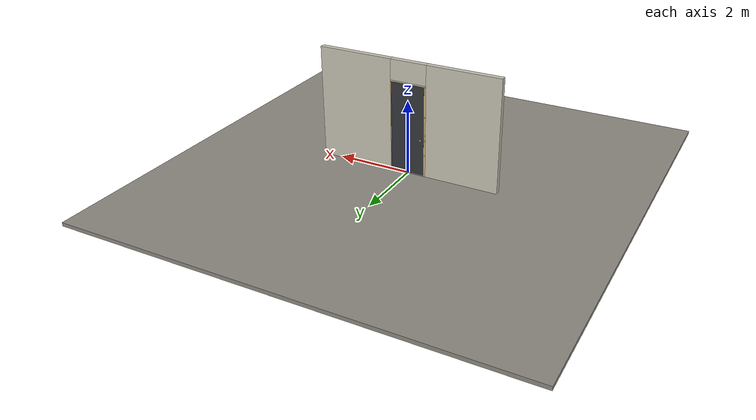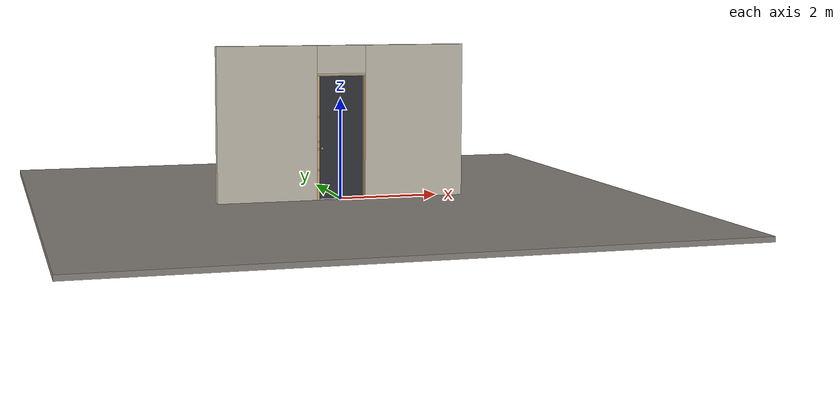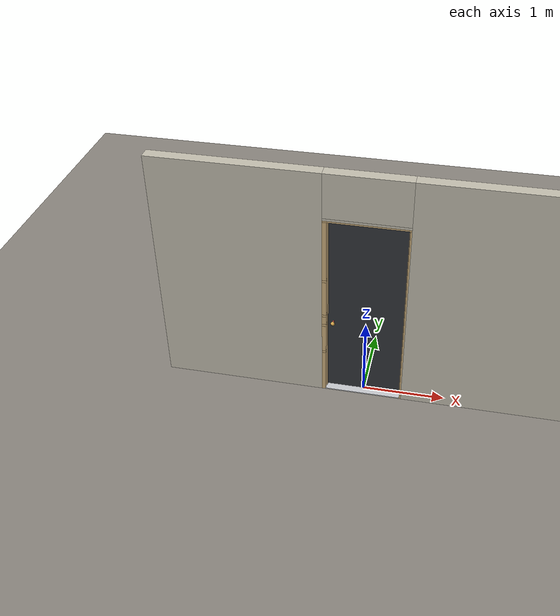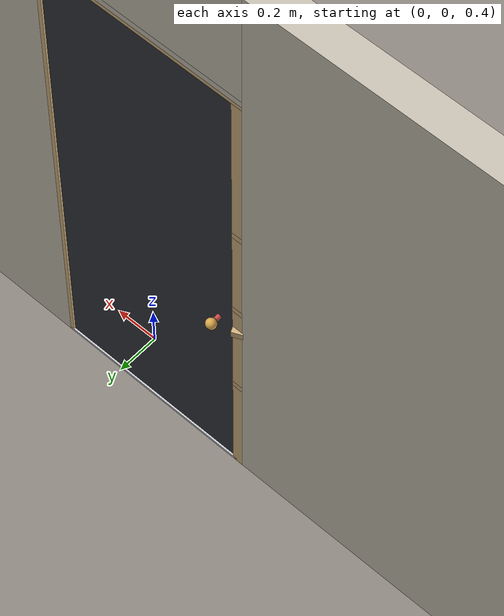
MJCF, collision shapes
<?xml version="1.0" ?>
<mujoco model="db0808_swing_single_minimal">
  <compiler angle="radian" meshdir="../../hardware" texturedir="../../textures" autolimits="true" inertiafromgeom="false"/>
  <option timestep="0.002" integrator="implicitfast" cone="elliptic" impratio="10" noslip_iterations="3">
    <flag multiccd="enable"/>
  </option>
  <size memory="16M"/>
  <default>
    <geom condim="4" solref="0.005 1" solimp="0.95 0.99 0.001"/>
    <joint solreflimit="0.005 1" solimplimit="0.95 0.99 0.001"/>
    <tendon solreflimit="0.005 1"/>
    <equality solref="0.002 1"/>
  </default>
  <visual>
    <headlight ambient="0.4 0.4 0.4" diffuse="0.7 0.7 0.7" specular="0.2 0.2 0.2"/>
    <quality shadowsize="4096"/>
    <map znear="0.01" zfar="60"/>
  </visual>
  <asset>
    <mesh name="knob_d1888f6f03" file="knob_d1888f6f03.obj"/>
    <material name="mat_floor" rgba="0.55 0.53 0.5 1" specular="0.2" shininess="0.15" reflectance="0"/>
    <material name="mat_wall" rgba="0.78 0.76 0.7 1" specular="0.2" shininess="0.1" reflectance="0"/>
    <material name="mat_leaf" rgba="0.2 0.21 0.23 1" specular="0.2" shininess="0.61" reflectance="0"/>
    <material name="mat_leaf_brace" rgba="0.18 0.189 0.207 1" specular="0.2" shininess="0.2" reflectance="0"/>
    <material name="mat_hinge" rgba="0.65 0.66 0.68 1" specular="0.74" shininess="0.5" reflectance="0.36"/>
    <material name="mat_op_brass" rgba="0.85 0.66 0.3 1" specular="0.8" shininess="0.75" reflectance="0.4"/>
    <material name="mat_trim" rgba="0.85 0.66 0.3 1" specular="0.8" shininess="0.75" reflectance="0.4"/>
    <material name="mat_bolt" rgba="0.85 0.66 0.3 1" specular="0.8" shininess="0.75" reflectance="0.4"/>
    <material name="mat_deadbolt" rgba="0.85 0.66 0.3 1" specular="0.8" shininess="0.75" reflectance="0.4"/>
    <material name="mat_frame" rgba="0.82 0.7 0.5 1" specular="0.2" shininess="0.45" reflectance="0"/>
    <material name="mat_seal" rgba="0.1 0.1 0.1 1" specular="0.2" shininess="0.1" reflectance="0"/>
    <material name="mat_threshold" rgba="0.8 0.81 0.83 1" specular="0.8" shininess="0.6" reflectance="0.4"/>
    <material name="mat_peephole" rgba="0.85 0.66 0.3 1" specular="0.8" shininess="0.75" reflectance="0.4"/>
    <material name="mat_sidelite" rgba="0.85 0.92 0.95 0.25" specular="0.2" shininess="0.95" reflectance="0.1"/>
    <material name="mat_bumper_stop" rgba="0.08 0.08 0.08 1" specular="0.2" shininess="0.1" reflectance="0"/>
    <material name="mat_stop_base" rgba="0.9 0.9 0.92 1" specular="0.8" shininess="0.9" reflectance="0.4"/>
    <texture name="skybox" type="skybox" builtin="gradient" rgb1="0.6 0.7 0.85" rgb2="0.9 0.92 0.95" width="256" height="256"/>
  </asset>
  <worldbody>
    <light name="sun" pos="1.5 -2.5 4" dir="-0.3 0.5 -0.8" directional="true" diffuse="0.8 0.8 0.8" specular="0.3 0.3 0.3" castshadow="true"/>
    <light name="fill" pos="-1.5 2.5 3" dir="0.3 -0.5 -0.7" directional="true" diffuse="0.35 0.35 0.4" castshadow="false"/>
    <camera name="robot_view" pos="0 -2.966312 2.043887" xyaxes="1 0 0 0 0.26963 0.962964" fovy="52"/>
    <camera name="far_view" pos="0 2.879313 2.043887" xyaxes="-1 0 0 0 -0.26963 0.962964" fovy="52"/>
    <camera name="iso" pos="-2.221337 -2.498663 2.511538" xyaxes="0.741536 -0.670913 0 0.242917 0.268487 0.932151" fovy="46"/>
    <camera name="detail_handle" pos="-0.2065 -0.8685 1.296" xyaxes="0.97561 0.219512 0 -0.070934 0.315262 0.94635" fovy="38"/>
    <geom name="floor" type="box" size="6 6 0.05" pos="0 0 -0.05" material="mat_floor" group="0" contype="1" conaffinity="1" friction="0.8 0.005 0.0001" density="2400"/>
    <geom name="wall_left" type="box" size="0.99525 0.0725 1.5255" pos="-1.50475 -0.0435 1.5255" material="mat_wall" group="0" contype="1" conaffinity="1" friction="0.6 0.005 0.0001" density="800"/>
    <geom name="wall_right" type="box" size="1.01025 0.0725 1.5255" pos="1.48975 -0.0435 1.5255" material="mat_wall" group="0" contype="1" conaffinity="1" friction="0.6 0.005 0.0001" density="800"/>
    <geom name="wall_header" type="box" size="0.4945 0.0725 0.2755" pos="-0.015 -0.0435 2.7755" material="mat_wall" group="0" contype="1" conaffinity="1" friction="0.6 0.005 0.0001" density="800"/>
    <geom name="jamb_hinge" type="box" size="0.0095 0.0725 1.2255" pos="0.47 -0.0435 1.2255" material="mat_frame" group="0" contype="1" conaffinity="1" friction="0.6 0.005 0.0001" density="400"/>
    <geom name="strike_606_wall_n" type="box" size="0.0245 0.05325 0.0155" pos="-0.485 -0.06275 0.606" material="mat_frame" group="0" contype="1" conaffinity="1" friction="0.6 0.005 0.0001" density="400"/>
    <geom name="strike_606_wall_p" type="box" size="0.0245 0.00975 0.0155" pos="-0.485 0.01925 0.606" material="mat_frame" group="0" contype="1" conaffinity="1" friction="0.6 0.005 0.0001" density="400"/>
    <geom name="strike_606_back" type="box" size="0.0125 0.0095 0.0155" pos="-0.497 0 0.606" material="mat_frame" group="0" contype="1" conaffinity="1" friction="0.6 0.005 0.0001" density="400"/>
    <geom name="strike_1016_wall_n" type="box" size="0.0245 0.054075 0.0167" pos="-0.485 -0.061925 1.016" material="mat_frame" group="0" contype="1" conaffinity="1" friction="0.6 0.005 0.0001" density="400"/>
    <geom name="strike_1016_wall_p" type="box" size="0.0245 0.008 0.0167" pos="-0.485 0.01585 1.016" material="mat_frame" group="0" contype="1" conaffinity="1" friction="0.6 0.005 0.0001" density="400"/>
    <geom name="strike_1016_ramp" type="box" size="0.0245 0.01649 0.0167" pos="-0.489636 0.028673 1.016" quat="0.977148 0 0 0.212558" material="mat_frame" group="0" contype="1" conaffinity="1" friction="0.12 0.005 0.0001" density="400"/>
    <geom name="strike_1016_back" type="box" size="0.01615 0.00785 0.0167" pos="-0.49335 0 1.016" material="mat_frame" group="0" contype="1" conaffinity="1" friction="0.6 0.005 0.0001" density="400"/>
    <geom name="strike_1156_wall_n" type="box" size="0.0245 0.05325 0.0155" pos="-0.485 -0.06275 1.156" material="mat_frame" group="0" contype="1" conaffinity="1" friction="0.6 0.005 0.0001" density="400"/>
    <geom name="strike_1156_wall_p" type="box" size="0.0245 0.00975 0.0155" pos="-0.485 0.01925 1.156" material="mat_frame" group="0" contype="1" conaffinity="1" friction="0.6 0.005 0.0001" density="400"/>
    <geom name="strike_1156_back" type="box" size="0.0125 0.0095 0.0155" pos="-0.497 0 1.156" material="mat_frame" group="0" contype="1" conaffinity="1" friction="0.6 0.005 0.0001" density="400"/>
    <geom name="strike_1656_wall_n" type="box" size="0.0245 0.05325 0.0155" pos="-0.485 -0.06275 1.656" material="mat_frame" group="0" contype="1" conaffinity="1" friction="0.6 0.005 0.0001" density="400"/>
    <geom name="strike_1656_wall_p" type="box" size="0.0245 0.00975 0.0155" pos="-0.485 0.01925 1.656" material="mat_frame" group="0" contype="1" conaffinity="1" friction="0.6 0.005 0.0001" density="400"/>
    <geom name="strike_1656_back" type="box" size="0.0125 0.0095 0.0155" pos="-0.497 0 1.656" material="mat_frame" group="0" contype="1" conaffinity="1" friction="0.6 0.005 0.0001" density="400"/>
    <geom name="jamb_strike_0" type="box" size="0.0245 0.0725 0.29525" pos="-0.485 -0.0435 0.29525" material="mat_frame" group="0" contype="1" conaffinity="1" friction="0.6 0.005 0.0001" density="400"/>
    <geom name="jamb_strike_1" type="box" size="0.0245 0.0725 0.1889" pos="-0.485 -0.0435 0.8104" material="mat_frame" group="0" contype="1" conaffinity="1" friction="0.6 0.005 0.0001" density="400"/>
    <geom name="jamb_strike_2" type="box" size="0.0245 0.0725 0.0539" pos="-0.485 -0.0435 1.0866" material="mat_frame" group="0" contype="1" conaffinity="1" friction="0.6 0.005 0.0001" density="400"/>
    <geom name="jamb_strike_3" type="box" size="0.0245 0.0725 0.2345" pos="-0.485 -0.0435 1.406" material="mat_frame" group="0" contype="1" conaffinity="1" friction="0.6 0.005 0.0001" density="400"/>
    <geom name="jamb_strike_4" type="box" size="0.0245 0.0725 0.38975" pos="-0.485 -0.0435 2.06125" material="mat_frame" group="0" contype="1" conaffinity="1" friction="0.6 0.005 0.0001" density="400"/>
    <geom name="jamb_head" type="box" size="0.4945 0.0725 0.0095" pos="-0.015 -0.0435 2.4605" material="mat_frame" group="0" contype="1" conaffinity="1" friction="0.6 0.005 0.0001" density="400"/>
    <geom name="head_stud" type="box" size="0.4945 0.0725 0.015" pos="-0.015 -0.0435 2.485" material="mat_wall" group="0" contype="1" conaffinity="1" friction="0.6 0.005 0.0001" density="500"/>
    <geom name="stop_hinge" type="box" size="0.0055 0.016 1.2255" pos="0.455 -0.0385 1.2255" material="mat_frame" group="0" contype="1" conaffinity="1" friction="0.6 0.005 0.0001" density="400"/>
    <geom name="stop_strike" type="box" size="0.0055 0.016 1.2255" pos="-0.455 -0.0385 1.2255" material="mat_frame" group="0" contype="1" conaffinity="1" friction="0.6 0.005 0.0001" density="400"/>
    <geom name="stop_head" type="box" size="0.4605 0.016 0.0055" pos="0 -0.0385 2.4455" material="mat_frame" group="0" contype="1" conaffinity="1" friction="0.6 0.005 0.0001" density="400"/>
    <geom name="threshold" type="box" size="0.4795 0.0725 0.0065" pos="0 -0.0435 0.0065" material="mat_threshold" group="0" contype="1" conaffinity="1" friction="0.5 0.005 0.0001" density="2700"/>
    <site name="approach_point" pos="0 -1.5 0" quat="1 0 0 0" size="0.05" rgba="0.2 0.9 0.2 0.5" group="4"/>
    <site name="goal_point" pos="0 1.5 0" quat="1 0 0 0" size="0.05" rgba="0.2 0.9 0.2 0.5" group="4"/>
    <site name="door_plane_center" pos="0 0 1.2255" quat="1 0 0 0" size="0.02" rgba="0.2 0.9 0.2 0.5" group="4"/>
    <body name="leaf" pos="0.4605 0 0">
      <inertial pos="-0.46 0 1.232" mass="33.066064" quat="-0.5 0.5 0.5 0.5" diaginertia="2.307272808 16.276318213 18.572921703"/>
      <joint name="leaf_hinge" type="hinge" axis="0 0 -1" pos="-0.003 0.029 0" limited="true" range="0 1.570796" solreflimit="0.02 1" damping="0.357281" frictionloss="1.054164" armature="0.02"/>
      <geom name="leaf_slab" type="box" size="0.457 0.022 1.215" pos="-0.46 0 1.232" material="mat_leaf" group="0" contype="1" conaffinity="1" friction="0.4 0.005 0.0001" density="1"/>
      <site name="leaf_edge_mid" pos="-0.917 0 1.215" quat="1 0 0 0" size="0.02" rgba="0.2 0.9 0.2 0.5" group="4"/>
      <body name="leaf_handle" pos="-0.847 0 1.016">
        <inertial pos="0 0 0" mass="1.098683" quat="0.5 0.5 0.5 0.5" diaginertia="0.000311555 0.004248143 0.004248143"/>
        <joint name="leaf_handle_hinge" type="hinge" axis="0 1 0" limited="true" range="0 0.87" damping="0.143614" frictionloss="0.038" stiffness="0.5" springref="-0.5" armature="0.01"/>
        <geom name="leaf_handle_knob_n" type="mesh" mesh="knob_d1888f6f03" pos="0 -0.022 0" quat="0 0 -0.707107 0.707107" material="mat_op_brass" group="1" contype="0" conaffinity="0" density="3000"/>
        <geom name="leaf_handle_knob_col_n" type="sphere" size="0.0243" pos="0 -0.0685 0" material="mat_op_brass" group="0" contype="1" conaffinity="1" friction="0.9 0.01 0.0001" density="3000"/>
        <geom name="leaf_handle_knob_neck_n" type="cylinder" size="0.011 0.012" pos="0 -0.034 0" quat="0.707107 -0.707107 0 0" material="mat_op_brass" group="3" contype="1" conaffinity="1" rgba="0.8 0.3 0.3 0.25" friction="0.6 0.005 0.0001" density="3000"/>
        <geom name="leaf_handle_knob_p" type="mesh" mesh="knob_d1888f6f03" pos="0 0.022 0" quat="0 0 0.707107 0.707107" material="mat_op_brass" group="1" contype="0" conaffinity="0" density="3000"/>
        <geom name="leaf_handle_knob_col_p" type="sphere" size="0.0243" pos="0 0.0685 0" material="mat_op_brass" group="0" contype="1" conaffinity="1" friction="0.9 0.01 0.0001" density="3000"/>
        <geom name="leaf_handle_knob_neck_p" type="cylinder" size="0.011 0.012" pos="0 0.034 0" quat="0.707107 -0.707107 0 0" material="mat_op_brass" group="3" contype="1" conaffinity="1" rgba="0.8 0.3 0.3 0.25" friction="0.6 0.005 0.0001" density="3000"/>
        <site name="leaf_handle_grip_n" pos="0 -0.0685 0" quat="1 0 0 0" size="0.012" rgba="0.2 0.9 0.2 0.5" group="4"/>
        <site name="leaf_handle_grip_p" pos="0 0.0685 0" quat="1 0 0 0" size="0.012" rgba="0.2 0.9 0.2 0.5" group="4"/>
      </body>
      <body name="leaf_latch_bolt" pos="-0.917 0 1.016">
        <inertial pos="0.00865 0 0" mass="0.041419" quat="0.92388 0.382683 0 0" diaginertia="0.000000798 0.000005598 0.000005598"/>
        <joint name="leaf_latch_bolt_slide" type="slide" axis="1 0 0" limited="true" range="0 0.0127" damping="2" frictionloss="0.3" stiffness="300" springref="-0.008333" armature="0.1"/>
        <geom name="leaf_latch_bolt_capsule" type="capsule" size="0.00635 0.015" pos="0.00865 0 0" quat="0.707107 0 -0.707107 0" material="mat_bolt" group="0" contype="1" conaffinity="1" friction="0.2 0.005 0.0001" density="8500"/>
      </body>
    </body>
  </worldbody>
  <tendon>
    <fixed name="leaf_latch_bolt_coupling" limited="true" range="0 10">
      <joint joint="leaf_latch_bolt_slide" coef="1"/>
      <joint joint="leaf_handle_hinge" coef="-0.015679"/>
    </fixed>
  </tendon>
  <sensor>
    <jointpos name="leaf_hinge_pos" joint="leaf_hinge"/>
    <jointvel name="leaf_hinge_vel" joint="leaf_hinge"/>
    <jointpos name="leaf_handle_hinge_pos" joint="leaf_handle_hinge"/>
    <jointvel name="leaf_handle_hinge_vel" joint="leaf_handle_hinge"/>
    <jointpos name="leaf_latch_bolt_slide_pos" joint="leaf_latch_bolt_slide"/>
    <jointvel name="leaf_latch_bolt_slide_vel" joint="leaf_latch_bolt_slide"/>
  </sensor>
</mujoco>
